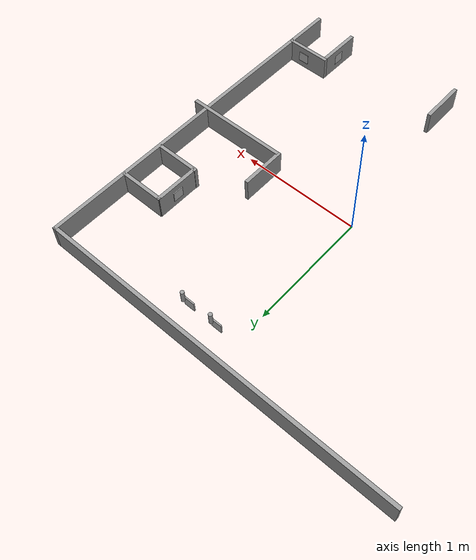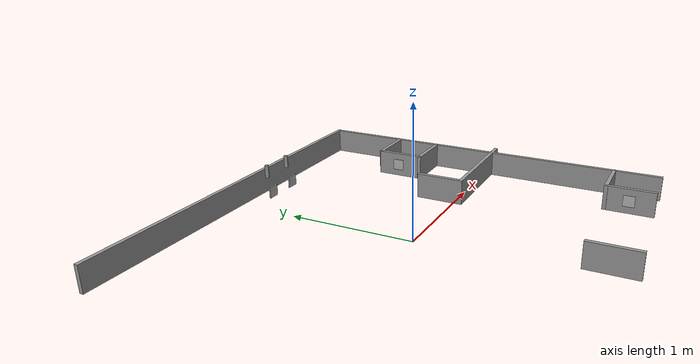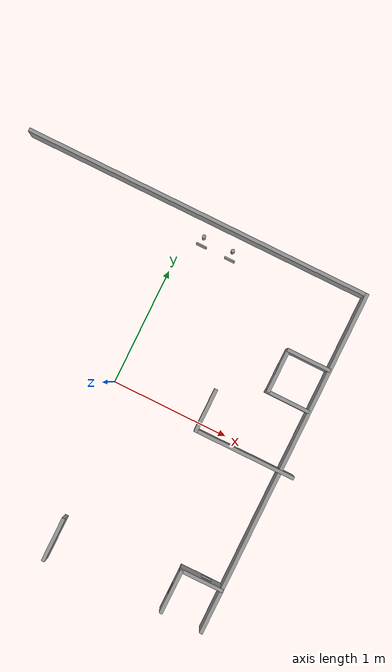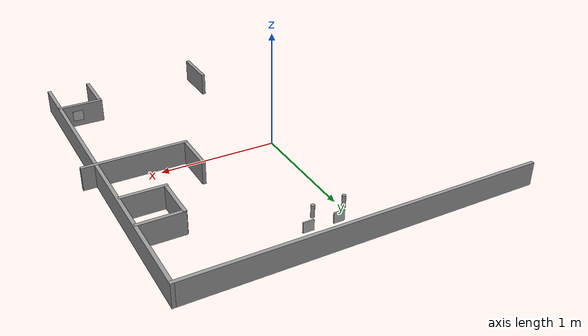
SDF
<sdf version="1.6">
 <model name="course">
  <link name="Wall_11_clone_clone_clone_0">
   <pose>1.32098 0.840435 -0 0 -0 3.1392</pose>
   <inertial>
    <inertia><ixx>1</ixx><ixy>0</ixy><ixz>0</ixz><iyy>1</iyy><iyz>0</iyz><izz>1</izz></inertia>
    <mass>1</mass>
   </inertial>
   <visual name="Wall_11_Visual">
    <pose>0 0 0.1 0 -0 0</pose>
    <geometry><box><size>0.380343 0.03 0.2</size></box></geometry>
    <material>
     <script><uri>file://media/materials/scripts/gazebo.material</uri><name>Gazebo/Grey</name></script>
     <ambient>1 1 1 1</ambient>
     <diffuse>0.7 0.7 0.7 1</diffuse>
     <specular>0.01 0.01 0.01 1</specular>
     <emissive>0 0 0 1</emissive>
     <shader type="pixel"/>
    </material>
   </visual>
   <collision name="Wall_11_Collision">
    <pose>0 0 0.1 0 -0 0</pose>
    <geometry><box><size>0.380343 0.03 0.2</size></box></geometry>
    <surface>
     <friction>
      <ode><mu>1</mu><mu2>1</mu2><fdir1>0 0 0</fdir1><slip1>0</slip1><slip2>0</slip2></ode>
      <torsional>
       <coefficient>1</coefficient>
       <patch_radius>0</patch_radius>
       <surface_radius>0</surface_radius>
       <use_patch_radius>1</use_patch_radius>
       <ode><slip>0</slip></ode>
      </torsional>
     </friction>
     <bounce><restitution_coefficient>0</restitution_coefficient><threshold>1e+06</threshold></bounce>
     <contact>
      <collide_without_contact>0</collide_without_contact>
      <collide_without_contact_bitmask>1</collide_without_contact_bitmask>
      <collide_bitmask>1</collide_bitmask>
      <ode>
       <soft_cfm>0</soft_cfm>
       <soft_erp>0.2</soft_erp>
       <kp>1e+13</kp>
       <kd>1</kd>
       <max_vel>0.01</max_vel>
       <min_depth>0</min_depth>
      </ode>
      <bullet>
       <split_impulse>1</split_impulse>
       <split_impulse_penetration_threshold>-0.01</split_impulse_penetration_threshold>
       <soft_cfm>0</soft_cfm>
       <soft_erp>0.2</soft_erp>
       <kp>1e+13</kp>
       <kd>1</kd>
      </bullet>
     </contact>
    </surface>
   </collision>
   <static>1</static>
  </link>
  <link name="Wall_11_clone_clone_clone_clone">
   <pose>1.14091 0.66035 -0 -0 -0 -1.57398</pose>
   <inertial>
    <inertia><ixx>1</ixx><ixy>0</ixy><ixz>0</ixz><iyy>1</iyy><iyz>0</iyz><izz>1</izz></inertia>
    <mass>1</mass>
   </inertial>
   <visual name="Wall_11_Visual">
    <pose>0 0 0.1 0 -0 0</pose>
    <geometry><box><size>0.380343 0.03 0.2</size></box></geometry>
    <material>
     <script><uri>file://media/materials/scripts/gazebo.material</uri><name>Gazebo/Grey</name></script>
     <ambient>1 1 1 1</ambient>
     <diffuse>0.7 0.7 0.7 1</diffuse>
     <specular>0.01 0.01 0.01 1</specular>
     <emissive>0 0 0 1</emissive>
     <shader type="pixel"/>
    </material>
   </visual>
   <collision name="Wall_11_Collision">
    <pose>0 0 0.1 0 -0 0</pose>
    <geometry><box><size>0.380343 0.03 0.2</size></box></geometry>
    <surface>
     <friction>
      <ode><mu>1</mu><mu2>1</mu2><fdir1>0 0 0</fdir1><slip1>0</slip1><slip2>0</slip2></ode>
      <torsional>
       <coefficient>1</coefficient>
       <patch_radius>0</patch_radius>
       <surface_radius>0</surface_radius>
       <use_patch_radius>1</use_patch_radius>
       <ode><slip>0</slip></ode>
      </torsional>
     </friction>
     <bounce><restitution_coefficient>0</restitution_coefficient><threshold>1e+06</threshold></bounce>
     <contact>
      <collide_without_contact>0</collide_without_contact>
      <collide_without_contact_bitmask>1</collide_without_contact_bitmask>
      <collide_bitmask>1</collide_bitmask>
      <ode>
       <soft_cfm>0</soft_cfm>
       <soft_erp>0.2</soft_erp>
       <kp>1e+13</kp>
       <kd>1</kd>
       <max_vel>0.01</max_vel>
       <min_depth>0</min_depth>
      </ode>
      <bullet>
       <split_impulse>1</split_impulse>
       <split_impulse_penetration_threshold>-0.01</split_impulse_penetration_threshold>
       <soft_cfm>0</soft_cfm>
       <soft_erp>0.2</soft_erp>
       <kp>1e+13</kp>
       <kd>1</kd>
      </bullet>
     </contact>
    </surface>
   </collision>
   <static>1</static>
  </link>
  <link name="Wall_11_clone_clone_clone_clone_clone">
   <pose>1.31241 0.473395 0 -0 -0 -0.00398</pose>
   <inertial>
    <inertia><ixx>1</ixx><ixy>0</ixy><ixz>0</ixz><iyy>1</iyy><iyz>0</iyz><izz>1</izz></inertia>
    <mass>1</mass>
   </inertial>
   <visual name="Wall_11_Visual">
    <pose>0 0 0.1 0 -0 0</pose>
    <geometry><box><size>0.380343 0.03 0.2</size></box></geometry>
    <material>
     <script><uri>file://media/materials/scripts/gazebo.material</uri><name>Gazebo/Grey</name></script>
     <ambient>1 1 1 1</ambient>
     <diffuse>0.7 0.7 0.7 1</diffuse>
     <specular>0.01 0.01 0.01 1</specular>
     <emissive>0 0 0 1</emissive>
     <shader type="pixel"/>
    </material>
   </visual>
   <collision name="Wall_11_Collision">
    <pose>0 0 0.1 0 -0 0</pose>
    <geometry><box><size>0.380343 0.03 0.2</size></box></geometry>
    <surface>
     <friction>
      <ode><mu>1</mu><mu2>1</mu2><fdir1>0 0 0</fdir1><slip1>0</slip1><slip2>0</slip2></ode>
      <torsional>
       <coefficient>1</coefficient>
       <patch_radius>0</patch_radius>
       <surface_radius>0</surface_radius>
       <use_patch_radius>1</use_patch_radius>
       <ode><slip>0</slip></ode>
      </torsional>
     </friction>
     <bounce><restitution_coefficient>0</restitution_coefficient><threshold>1e+06</threshold></bounce>
     <contact>
      <collide_without_contact>0</collide_without_contact>
      <collide_without_contact_bitmask>1</collide_without_contact_bitmask>
      <collide_bitmask>1</collide_bitmask>
      <ode>
       <soft_cfm>0</soft_cfm>
       <soft_erp>0.2</soft_erp>
       <kp>1e+13</kp>
       <kd>1</kd>
       <max_vel>0.01</max_vel>
       <min_depth>0</min_depth>
      </ode>
      <bullet>
       <split_impulse>1</split_impulse>
       <split_impulse_penetration_threshold>-0.01</split_impulse_penetration_threshold>
       <soft_cfm>0</soft_cfm>
       <soft_erp>0.2</soft_erp>
       <kp>1e+13</kp>
       <kd>1</kd>
      </bullet>
     </contact>
    </surface>
   </collision>
   <static>1</static>
  </link>
  <link name="Wall_11_clone_clone_clone_clone_clone_clone">
   <pose>1.15084 -1.2876 -0 0 -0 1.56602</pose>
   <inertial>
    <inertia><ixx>1</ixx><ixy>0</ixy><ixz>0</ixz><iyy>1</iyy><iyz>0</iyz><izz>1</izz></inertia>
    <mass>1</mass>
   </inertial>
   <visual name="Wall_11_Visual">
    <pose>0 0 0.1 0 -0 0</pose>
    <geometry><box><size>0.380343 0.03 0.2</size></box></geometry>
    <material>
     <script><uri>file://media/materials/scripts/gazebo.material</uri><name>Gazebo/Grey</name></script>
     <ambient>1 1 1 1</ambient>
     <diffuse>0.7 0.7 0.7 1</diffuse>
     <specular>0.01 0.01 0.01 1</specular>
     <emissive>0 0 0 1</emissive>
     <shader type="pixel"/>
    </material>
   </visual>
   <collision name="Wall_11_Collision">
    <pose>0 0 0.1 0 -0 0</pose>
    <geometry><box><size>0.380343 0.03 0.2</size></box></geometry>
    <surface>
     <friction>
      <ode><mu>1</mu><mu2>1</mu2><fdir1>0 0 0</fdir1><slip1>0</slip1><slip2>0</slip2></ode>
      <torsional>
       <coefficient>1</coefficient>
       <patch_radius>0</patch_radius>
       <surface_radius>0</surface_radius>
       <use_patch_radius>1</use_patch_radius>
       <ode><slip>0</slip></ode>
      </torsional>
     </friction>
     <bounce><restitution_coefficient>0</restitution_coefficient><threshold>1e+06</threshold></bounce>
     <contact>
      <collide_without_contact>0</collide_without_contact>
      <collide_without_contact_bitmask>1</collide_without_contact_bitmask>
      <collide_bitmask>1</collide_bitmask>
      <ode>
       <soft_cfm>0</soft_cfm>
       <soft_erp>0.2</soft_erp>
       <kp>1e+13</kp>
       <kd>1</kd>
       <max_vel>0.01</max_vel>
       <min_depth>0</min_depth>
      </ode>
      <bullet>
       <split_impulse>1</split_impulse>
       <split_impulse_penetration_threshold>-0.01</split_impulse_penetration_threshold>
       <soft_cfm>0</soft_cfm>
       <soft_erp>0.2</soft_erp>
       <kp>1e+13</kp>
       <kd>1</kd>
      </bullet>
     </contact>
    </surface>
   </collision>
   <static>1</static>
  </link>
  <link name="Wall_11_clone_clone_clone_clone_clone_clone_clone">
   <pose>1.32573 -1.10236 -0 0 -0 3.13602</pose>
   <inertial>
    <inertia><ixx>1</ixx><ixy>0</ixy><ixz>0</ixz><iyy>1</iyy><iyz>0</iyz><izz>1</izz></inertia>
    <mass>1</mass>
   </inertial>
   <visual name="Wall_11_Visual">
    <pose>0 0 0.1 0 -0 0</pose>
    <geometry><box><size>0.380343 0.03 0.2</size></box></geometry>
    <material>
     <script><uri>file://media/materials/scripts/gazebo.material</uri><name>Gazebo/Grey</name></script>
     <ambient>1 1 1 1</ambient>
     <diffuse>0.7 0.7 0.7 1</diffuse>
     <specular>0.01 0.01 0.01 1</specular>
     <emissive>0 0 0 1</emissive>
     <shader type="pixel"/>
    </material>
   </visual>
   <collision name="Wall_11_Collision">
    <pose>0 0 0.1 0 -0 0</pose>
    <geometry><box><size>0.380343 0.03 0.2</size></box></geometry>
    <surface>
     <friction>
      <ode><mu>1</mu><mu2>1</mu2><fdir1>0 0 0</fdir1><slip1>0</slip1><slip2>0</slip2></ode>
      <torsional>
       <coefficient>1</coefficient>
       <patch_radius>0</patch_radius>
       <surface_radius>0</surface_radius>
       <use_patch_radius>1</use_patch_radius>
       <ode><slip>0</slip></ode>
      </torsional>
     </friction>
     <bounce><restitution_coefficient>0</restitution_coefficient><threshold>1e+06</threshold></bounce>
     <contact>
      <collide_without_contact>0</collide_without_contact>
      <collide_without_contact_bitmask>1</collide_without_contact_bitmask>
      <collide_bitmask>1</collide_bitmask>
      <ode>
       <soft_cfm>0</soft_cfm>
       <soft_erp>0.2</soft_erp>
       <kp>1e+13</kp>
       <kd>1</kd>
       <max_vel>0.01</max_vel>
       <min_depth>0</min_depth>
      </ode>
      <bullet>
       <split_impulse>1</split_impulse>
       <split_impulse_penetration_threshold>-0.01</split_impulse_penetration_threshold>
       <soft_cfm>0</soft_cfm>
       <soft_erp>0.2</soft_erp>
       <kp>1e+13</kp>
       <kd>1</kd>
      </bullet>
     </contact>
    </surface>
   </collision>
   <static>1</static>
  </link>
  <link name="Wall_14">
   <pose>0.763969 0.121894 -0 0 0 -1.5708</pose>
   <inertial>
    <inertia><ixx>1</ixx><ixy>0</ixy><ixz>0</ixz><iyy>1</iyy><iyz>0</iyz><izz>1</izz></inertia>
    <mass>1</mass>
   </inertial>
   <visual name="Wall_14_Visual">
    <pose>0 0 0.1 0 -0 0</pose>
    <geometry><box><size>0.379782 0.03 0.2</size></box></geometry>
    <material>
     <script><uri>file://media/materials/scripts/gazebo.material</uri><name>Gazebo/Grey</name></script>
     <ambient>1 1 1 1</ambient>
     <diffuse>0.7 0.7 0.7 1</diffuse>
     <specular>0.01 0.01 0.01 1</specular>
     <emissive>0 0 0 1</emissive>
    </material>
   </visual>
   <collision name="Wall_14_Collision">
    <pose>0 0 0.1 0 -0 0</pose>
    <geometry><box><size>0.379782 0.03 0.2</size></box></geometry>
    <surface>
     <friction>
      <ode><mu>1</mu><mu2>1</mu2><fdir1>0 0 0</fdir1><slip1>0</slip1><slip2>0</slip2></ode>
      <torsional>
       <coefficient>1</coefficient>
       <patch_radius>0</patch_radius>
       <surface_radius>0</surface_radius>
       <use_patch_radius>1</use_patch_radius>
       <ode><slip>0</slip></ode>
      </torsional>
     </friction>
     <bounce><restitution_coefficient>0</restitution_coefficient><threshold>1e+06</threshold></bounce>
     <contact>
      <collide_without_contact>0</collide_without_contact>
      <collide_without_contact_bitmask>1</collide_without_contact_bitmask>
      <collide_bitmask>1</collide_bitmask>
      <ode>
       <soft_cfm>0</soft_cfm>
       <soft_erp>0.2</soft_erp>
       <kp>1e+13</kp>
       <kd>1</kd>
       <max_vel>0.01</max_vel>
       <min_depth>0</min_depth>
      </ode>
      <bullet>
       <split_impulse>1</split_impulse>
       <split_impulse_penetration_threshold>-0.01</split_impulse_penetration_threshold>
       <soft_cfm>0</soft_cfm>
       <soft_erp>0.2</soft_erp>
       <kp>1e+13</kp>
       <kd>1</kd>
      </bullet>
     </contact>
    </surface>
   </collision>
   <static>1</static>
  </link>
  <link name="Wall_15">
   <pose>1.18897 -0.053106 0 0 -0 0</pose>
   <inertial>
    <inertia><ixx>1</ixx><ixy>0</ixy><ixz>0</ixz><iyy>1</iyy><iyz>0</iyz><izz>1</izz></inertia>
    <mass>1</mass>
   </inertial>
   <visual name="Wall_15_Visual">
    <pose>0 0 0.1 0 -0 0</pose>
    <geometry><box><size>0.879767 0.03 0.2</size></box></geometry>
    <material>
     <script><uri>file://media/materials/scripts/gazebo.material</uri><name>Gazebo/Grey</name></script>
     <ambient>1 1 1 1</ambient>
     <diffuse>0.7 0.7 0.7 1</diffuse>
     <specular>0.01 0.01 0.01 1</specular>
     <emissive>0 0 0 1</emissive>
    </material>
   </visual>
   <collision name="Wall_15_Collision">
    <pose>0 0 0.1 0 -0 0</pose>
    <geometry><box><size>0.879767 0.03 0.2</size></box></geometry>
    <surface>
     <friction>
      <ode><mu>1</mu><mu2>1</mu2><fdir1>0 0 0</fdir1><slip1>0</slip1><slip2>0</slip2></ode>
      <torsional>
       <coefficient>1</coefficient>
       <patch_radius>0</patch_radius>
       <surface_radius>0</surface_radius>
       <use_patch_radius>1</use_patch_radius>
       <ode><slip>0</slip></ode>
      </torsional>
     </friction>
     <bounce><restitution_coefficient>0</restitution_coefficient><threshold>1e+06</threshold></bounce>
     <contact>
      <collide_without_contact>0</collide_without_contact>
      <collide_without_contact_bitmask>1</collide_without_contact_bitmask>
      <collide_bitmask>1</collide_bitmask>
      <ode>
       <soft_cfm>0</soft_cfm>
       <soft_erp>0.2</soft_erp>
       <kp>1e+13</kp>
       <kd>1</kd>
       <max_vel>0.01</max_vel>
       <min_depth>0</min_depth>
      </ode>
      <bullet>
       <split_impulse>1</split_impulse>
       <split_impulse_penetration_threshold>-0.01</split_impulse_penetration_threshold>
       <soft_cfm>0</soft_cfm>
       <soft_erp>0.2</soft_erp>
       <kp>1e+13</kp>
       <kd>1</kd>
      </bullet>
     </contact>
    </surface>
   </collision>
   <static>1</static>
  </link>
  <link name="Wall_17">
   <pose>0.128969 -1.33011 -0 0 0 -1.5708</pose>
   <inertial>
    <inertia><ixx>1</ixx><ixy>0</ixy><ixz>0</ixz><iyy>1</iyy><iyz>0</iyz><izz>1</izz></inertia>
    <mass>1</mass>
   </inertial>
   <visual name="Wall_17_Visual">
    <pose>0 0 0.1 0 -0 0</pose>
    <geometry><box><size>0.379578 0.03 0.2</size></box></geometry>
    <material>
     <script><uri>file://media/materials/scripts/gazebo.material</uri><name>Gazebo/Grey</name></script>
     <ambient>1 1 1 1</ambient>
     <diffuse>0.7 0.7 0.7 1</diffuse>
     <specular>0.01 0.01 0.01 1</specular>
     <emissive>0 0 0 1</emissive>
    </material>
   </visual>
   <collision name="Wall_17_Collision">
    <pose>0 0 0.1 0 -0 0</pose>
    <geometry><box><size>0.379578 0.03 0.2</size></box></geometry>
    <surface>
     <friction>
      <ode><mu>1</mu><mu2>1</mu2><fdir1>0 0 0</fdir1><slip1>0</slip1><slip2>0</slip2></ode>
      <torsional>
       <coefficient>1</coefficient>
       <patch_radius>0</patch_radius>
       <surface_radius>0</surface_radius>
       <use_patch_radius>1</use_patch_radius>
       <ode><slip>0</slip></ode>
      </torsional>
     </friction>
     <bounce><restitution_coefficient>0</restitution_coefficient><threshold>1e+06</threshold></bounce>
     <contact>
      <collide_without_contact>0</collide_without_contact>
      <collide_without_contact_bitmask>1</collide_without_contact_bitmask>
      <collide_bitmask>1</collide_bitmask>
      <ode>
       <soft_cfm>0</soft_cfm>
       <soft_erp>0.2</soft_erp>
       <kp>1e+13</kp>
       <kd>1</kd>
       <max_vel>0.01</max_vel>
       <min_depth>0</min_depth>
      </ode>
      <bullet>
       <split_impulse>1</split_impulse>
       <split_impulse_penetration_threshold>-0.01</split_impulse_penetration_threshold>
       <soft_cfm>0</soft_cfm>
       <soft_erp>0.2</soft_erp>
       <kp>1e+13</kp>
       <kd>1</kd>
      </bullet>
     </contact>
    </surface>
   </collision>
   <static>1</static>
  </link>
  <link name="Wall_2">
   <pose>1.50597 0.019894 0 0 0 -1.5708</pose>
   <inertial>
    <inertia><ixx>1</ixx><ixy>0</ixy><ixz>0</ixz><iyy>1</iyy><iyz>0</iyz><izz>1</izz></inertia>
    <mass>1</mass>
   </inertial>
   <visual name="Wall_2_Visual">
    <pose>0 0 0.1 0 -0 0</pose>
    <geometry><box><size>3 0.03 0.2</size></box></geometry>
    <material>
     <script><uri>file://media/materials/scripts/gazebo.material</uri><name>Gazebo/Grey</name></script>
     <ambient>1 1 1 1</ambient>
     <diffuse>0.7 0.7 0.7 1</diffuse>
     <specular>0.01 0.01 0.01 1</specular>
     <emissive>0 0 0 1</emissive>
    </material>
   </visual>
   <collision name="Wall_2_Collision">
    <pose>0 0 0.1 0 -0 0</pose>
    <geometry><box><size>3 0.03 0.2</size></box></geometry>
    <surface>
     <friction>
      <ode><mu>1</mu><mu2>1</mu2><fdir1>0 0 0</fdir1><slip1>0</slip1><slip2>0</slip2></ode>
      <torsional>
       <coefficient>1</coefficient>
       <patch_radius>0</patch_radius>
       <surface_radius>0</surface_radius>
       <use_patch_radius>1</use_patch_radius>
       <ode><slip>0</slip></ode>
      </torsional>
     </friction>
     <bounce><restitution_coefficient>0</restitution_coefficient><threshold>1e+06</threshold></bounce>
     <contact>
      <collide_without_contact>0</collide_without_contact>
      <collide_without_contact_bitmask>1</collide_without_contact_bitmask>
      <collide_bitmask>1</collide_bitmask>
      <ode>
       <soft_cfm>0</soft_cfm>
       <soft_erp>0.2</soft_erp>
       <kp>1e+13</kp>
       <kd>1</kd>
       <max_vel>0.01</max_vel>
       <min_depth>0</min_depth>
      </ode>
      <bullet>
       <split_impulse>1</split_impulse>
       <split_impulse_penetration_threshold>-0.01</split_impulse_penetration_threshold>
       <soft_cfm>0</soft_cfm>
       <soft_erp>0.2</soft_erp>
       <kp>1e+13</kp>
       <kd>1</kd>
      </bullet>
     </contact>
    </surface>
   </collision>
   <static>1</static>
  </link>
  <link name="Wall_9">
   <pose>0.020969 1.50489 -0 0 -0 0</pose>
   <inertial>
    <inertia><ixx>1</ixx><ixy>0</ixy><ixz>0</ixz><iyy>1</iyy><iyz>0</iyz><izz>1</izz></inertia>
    <mass>1</mass>
   </inertial>
   <visual name="Wall_9_Visual">
    <pose>0 0 0.1 0 -0 0</pose>
    <geometry><box><size>2.99951 0.03 0.2</size></box></geometry>
    <material>
     <script><uri>file://media/materials/scripts/gazebo.material</uri><name>Gazebo/Grey</name></script>
     <ambient>1 1 1 1</ambient>
     <diffuse>0.7 0.7 0.7 1</diffuse>
     <specular>0.01 0.01 0.01 1</specular>
     <emissive>0 0 0 1</emissive>
    </material>
   </visual>
   <collision name="Wall_9_Collision">
    <pose>0 0 0.1 0 -0 0</pose>
    <geometry><box><size>2.99951 0.03 0.2</size></box></geometry>
    <surface>
     <friction>
      <ode><mu>1</mu><mu2>1</mu2><fdir1>0 0 0</fdir1><slip1>0</slip1><slip2>0</slip2></ode>
      <torsional>
       <coefficient>1</coefficient>
       <patch_radius>0</patch_radius>
       <surface_radius>0</surface_radius>
       <use_patch_radius>1</use_patch_radius>
       <ode><slip>0</slip></ode>
      </torsional>
     </friction>
     <bounce><restitution_coefficient>0</restitution_coefficient><threshold>1e+06</threshold></bounce>
     <contact>
      <collide_without_contact>0</collide_without_contact>
      <collide_without_contact_bitmask>1</collide_without_contact_bitmask>
      <collide_bitmask>1</collide_bitmask>
      <ode>
       <soft_cfm>0</soft_cfm>
       <soft_erp>0.2</soft_erp>
       <kp>1e+13</kp>
       <kd>1</kd>
       <max_vel>0.01</max_vel>
       <min_depth>0</min_depth>
      </ode>
      <bullet>
       <split_impulse>1</split_impulse>
       <split_impulse_penetration_threshold>-0.01</split_impulse_penetration_threshold>
       <soft_cfm>0</soft_cfm>
       <soft_erp>0.2</soft_erp>
       <kp>1e+13</kp>
       <kd>1</kd>
      </bullet>
     </contact>
    </surface>
   </collision>
   <static>1</static>
  </link>
  <link name="link_0_0">
   <pose>0.400775 1.33846 0.26 0 -0 1.57</pose>
   <inertial>
    <mass>0.00160463</mass>
    <inertia>
     <ixx>9.53e-06</ixx>
     <ixy>0</ixy>
     <ixz>0</ixz>
     <iyy>9.53e-06</iyy>
     <iyz>0</iyz>
     <izz>1.25e-06</izz>
    </inertia>
   </inertial>
   <visual name="visual">
    <geometry><cylinder><radius>0.015</radius><length>0.1</length></cylinder></geometry>
    <material>
     <lighting>1</lighting>
     <script><uri>file://media/materials/scripts/gazebo.material</uri><name>Gazebo/Grey</name></script>
     <ambient>0.3 0.3 0.3 1</ambient>
     <diffuse>0.7 0.7 0.7 1</diffuse>
     <specular>0.01 0.01 0.01 1</specular>
     <emissive>0 0 0 1</emissive>
     <shader type="vertex"><normal_map>__default__</normal_map></shader>
    </material>
   </visual>
   <collision name="collision">
    <geometry><cylinder><radius>0.015</radius><length>0.1</length></cylinder></geometry>
    <surface>
     <friction>
      <ode><mu>1</mu><mu2>1</mu2><fdir1>0 0 0</fdir1><slip1>0</slip1><slip2>0</slip2></ode>
      <torsional>
       <coefficient>1</coefficient>
       <patch_radius>0</patch_radius>
       <surface_radius>0</surface_radius>
       <use_patch_radius>1</use_patch_radius>
       <ode><slip>0</slip></ode>
      </torsional>
     </friction>
     <bounce><restitution_coefficient>0</restitution_coefficient><threshold>1e+06</threshold></bounce>
     <contact>
      <collide_without_contact>0</collide_without_contact>
      <collide_without_contact_bitmask>1</collide_without_contact_bitmask>
      <collide_bitmask>1</collide_bitmask>
      <ode>
       <soft_cfm>0</soft_cfm>
       <soft_erp>0.2</soft_erp>
       <kp>1e+13</kp>
       <kd>1</kd>
       <max_vel>0.01</max_vel>
       <min_depth>0</min_depth>
      </ode>
      <bullet>
       <split_impulse>1</split_impulse>
       <split_impulse_penetration_threshold>-0.01</split_impulse_penetration_threshold>
       <soft_cfm>0</soft_cfm>
       <soft_erp>0.2</soft_erp>
       <kp>1e+13</kp>
       <kd>1</kd>
      </bullet>
     </contact>
    </surface>
   </collision>
   <static>0</static>
  </link>
  <link name="link_0_0_clone">
   <pose>0.14871 1.33863 0.26 0 -0 3.14</pose>
   <inertial>
    <mass>0.00160463</mass>
    <inertia>
     <ixx>9.53e-06</ixx>
     <ixy>0</ixy>
     <ixz>0</ixz>
     <iyy>9.53e-06</iyy>
     <iyz>0</iyz>
     <izz>1.25e-06</izz>
    </inertia>
   </inertial>
   <visual name="visual_0">
    <geometry><cylinder><radius>0.015</radius><length>0.1</length></cylinder></geometry>
    <material>
     <lighting>1</lighting>
     <script><uri>file://media/materials/scripts/gazebo.material</uri><name>Gazebo/Grey</name></script>
     <ambient>0.3 0.3 0.3 1</ambient>
     <diffuse>0.7 0.7 0.7 1</diffuse>
     <specular>0.01 0.01 0.01 1</specular>
     <emissive>0 0 0 1</emissive>
     <shader type="vertex"><normal_map>__default__</normal_map></shader>
    </material>
   </visual>
   <collision name="collision">
    <geometry><cylinder><radius>0.015</radius><length>0.1</length></cylinder></geometry>
    <surface>
     <friction>
      <ode><mu>1</mu><mu2>1</mu2><fdir1>0 0 0</fdir1><slip1>0</slip1><slip2>0</slip2></ode>
      <torsional>
       <coefficient>1</coefficient>
       <patch_radius>0</patch_radius>
       <surface_radius>0</surface_radius>
       <use_patch_radius>1</use_patch_radius>
       <ode><slip>0</slip></ode>
      </torsional>
     </friction>
     <bounce><restitution_coefficient>0</restitution_coefficient><threshold>1e+06</threshold></bounce>
     <contact>
      <collide_without_contact>0</collide_without_contact>
      <collide_without_contact_bitmask>1</collide_without_contact_bitmask>
      <collide_bitmask>1</collide_bitmask>
      <ode>
       <soft_cfm>0</soft_cfm>
       <soft_erp>0.2</soft_erp>
       <kp>1e+13</kp>
       <kd>1</kd>
       <max_vel>0.01</max_vel>
       <min_depth>0</min_depth>
      </ode>
      <bullet>
       <split_impulse>1</split_impulse>
       <split_impulse_penetration_threshold>-0.01</split_impulse_penetration_threshold>
       <soft_cfm>0</soft_cfm>
       <soft_erp>0.2</soft_erp>
       <kp>1e+13</kp>
       <kd>1</kd>
      </bullet>
     </contact>
    </surface>
   </collision>
  </link>
  <model name="armarker02">
   <link name="link">
    <pose>0 0 0.1 0 -0 0</pose>
    <inertial>
     <mass>1</mass>
     <inertia>
      <ixx>0.166667</ixx>
      <ixy>0</ixy>
      <ixz>0</ixz>
      <iyy>0.166667</iyy>
      <iyz>0</iyz>
      <izz>0.166667</izz>
     </inertia>
    </inertial>
    <visual name="visual">
     <geometry><box><size>0.09 0.01 0.09</size></box></geometry>
     <material>
      <script>
       <uri>model://turtlebot3_home_service/armarker02/materials/scripts</uri>
       <uri>model://turtlebot3_home_service/armarker02/materials/textures</uri>
       <name>armarker02</name>
      </script>
     </material>
    </visual>
    <collision name="collision">
     <geometry><box><size>0.09 0.01 0.09</size></box></geometry>
     <surface>
      <friction>
       <ode><mu>1</mu><mu2>1</mu2><fdir1>0 0 0</fdir1><slip1>0</slip1><slip2>0</slip2></ode>
       <torsional>
        <coefficient>1</coefficient>
        <patch_radius>0</patch_radius>
        <surface_radius>0</surface_radius>
        <use_patch_radius>1</use_patch_radius>
        <ode><slip>0</slip></ode>
       </torsional>
      </friction>
      <bounce><restitution_coefficient>0</restitution_coefficient><threshold>1e+06</threshold></bounce>
      <contact>
       <collide_without_contact>0</collide_without_contact>
       <collide_without_contact_bitmask>1</collide_without_contact_bitmask>
       <collide_bitmask>1</collide_bitmask>
       <ode>
        <soft_cfm>0</soft_cfm>
        <soft_erp>0.2</soft_erp>
        <kp>1e+13</kp>
        <kd>1</kd>
        <max_vel>0.01</max_vel>
        <min_depth>0</min_depth>
       </ode>
       <bullet>
        <split_impulse>1</split_impulse>
        <split_impulse_penetration_threshold>-0.01</split_impulse_penetration_threshold>
        <soft_cfm>0</soft_cfm>
        <soft_erp>0.2</soft_erp>
        <kp>1e+13</kp>
        <kd>1</kd>
       </bullet>
      </contact>
     </surface>
    </collision>
   </link>
   <static>1</static>
   <pose>0.150104 1.29248 0 0 0 0</pose>
  </model>
  <model name="armarker03">
   <link name="link">
    <pose>0 0 0.1 0 -0 0</pose>
    <inertial>
     <mass>1</mass>
     <inertia>
      <ixx>0.166667</ixx>
      <ixy>0</ixy>
      <ixz>0</ixz>
      <iyy>0.166667</iyy>
      <iyz>0</iyz>
      <izz>0.166667</izz>
     </inertia>
    </inertial>
    <visual name="visual">
     <geometry><box><size>0.09 0.01 0.09</size></box></geometry>
     <material>
      <script>
       <uri>model://turtlebot3_home_service/armarker03/materials/scripts</uri>
       <uri>model://turtlebot3_home_service/armarker03/materials/textures</uri>
       <name>armarker03</name>
      </script>
     </material>
    </visual>
    <collision name="collision">
     <geometry><box><size>0.09 0.01 0.09</size></box></geometry>
     <surface>
      <friction>
       <ode><mu>1</mu><mu2>1</mu2><fdir1>0 0 0</fdir1><slip1>0</slip1><slip2>0</slip2></ode>
       <torsional>
        <coefficient>1</coefficient>
        <patch_radius>0</patch_radius>
        <surface_radius>0</surface_radius>
        <use_patch_radius>1</use_patch_radius>
        <ode><slip>0</slip></ode>
       </torsional>
      </friction>
      <bounce><restitution_coefficient>0</restitution_coefficient><threshold>1e+06</threshold></bounce>
      <contact>
       <collide_without_contact>0</collide_without_contact>
       <collide_without_contact_bitmask>1</collide_without_contact_bitmask>
       <collide_bitmask>1</collide_bitmask>
       <ode>
        <soft_cfm>0</soft_cfm>
        <soft_erp>0.2</soft_erp>
        <kp>1e+13</kp>
        <kd>1</kd>
        <max_vel>0.01</max_vel>
        <min_depth>0</min_depth>
       </ode>
       <bullet>
        <split_impulse>1</split_impulse>
        <split_impulse_penetration_threshold>-0.01</split_impulse_penetration_threshold>
        <soft_cfm>0</soft_cfm>
        <soft_erp>0.2</soft_erp>
        <kp>1e+13</kp>
        <kd>1</kd>
       </bullet>
      </contact>
     </surface>
    </collision>
   </link>
   <static>1</static>
   <pose>0.401161 1.29022 -0 0 0 0</pose>
  </model>
  <model name="armarker05">
   <link name="link">
    <pose>0 0 0.1 0 -0 0</pose>
    <inertial>
     <mass>1</mass>
     <inertia>
      <ixx>0.166667</ixx>
      <ixy>0</ixy>
      <ixz>0</ixz>
      <iyy>0.166667</iyy>
      <iyz>0</iyz>
      <izz>0.166667</izz>
     </inertia>
    </inertial>
    <visual name="visual">
     <geometry><box><size>0.09 0.01 0.09</size></box></geometry>
     <material>
      <script>
       <uri>model://turtlebot3_home_service/armarker05/materials/scripts</uri>
       <uri>model://turtlebot3_home_service/armarker05/materials/textures</uri>
       <name>armarker05</name>
      </script>
     </material>
    </visual>
    <collision name="collision">
     <geometry><box><size>0.09 0.01 0.09</size></box></geometry>
     <surface>
      <friction>
       <ode><mu>1</mu><mu2>1</mu2><fdir1>0 0 0</fdir1><slip1>0</slip1><slip2>0</slip2></ode>
       <torsional>
        <coefficient>1</coefficient>
        <patch_radius>0</patch_radius>
        <surface_radius>0</surface_radius>
        <use_patch_radius>1</use_patch_radius>
        <ode><slip>0</slip></ode>
       </torsional>
      </friction>
      <bounce><restitution_coefficient>0</restitution_coefficient><threshold>1e+06</threshold></bounce>
      <contact>
       <collide_without_contact>0</collide_without_contact>
       <collide_without_contact_bitmask>1</collide_without_contact_bitmask>
       <collide_bitmask>1</collide_bitmask>
       <ode>
        <soft_cfm>0</soft_cfm>
        <soft_erp>0.2</soft_erp>
        <kp>1e+13</kp>
        <kd>1</kd>
        <max_vel>0.01</max_vel>
        <min_depth>0</min_depth>
       </ode>
       <bullet>
        <split_impulse>1</split_impulse>
        <split_impulse_penetration_threshold>-0.01</split_impulse_penetration_threshold>
        <soft_cfm>0</soft_cfm>
        <soft_erp>0.2</soft_erp>
        <kp>1e+13</kp>
        <kd>1</kd>
       </bullet>
      </contact>
     </surface>
    </collision>
   </link>
   <static>1</static>
   <pose>1.12497 0.670489 -0 0 -0 -1.57642</pose>
  </model>
  <model name="armarker06">
   <link name="link">
    <pose>0 0 0.1 0 -0 0</pose>
    <inertial>
     <mass>1</mass>
     <inertia>
      <ixx>0.166667</ixx>
      <ixy>0</ixy>
      <ixz>0</ixz>
      <iyy>0.166667</iyy>
      <iyz>0</iyz>
      <izz>0.166667</izz>
     </inertia>
    </inertial>
    <visual name="visual">
     <geometry><box><size>0.09 0.01 0.09</size></box></geometry>
     <material>
      <script>
       <uri>model://turtlebot3_home_service/armarker06/materials/scripts</uri>
       <uri>model://turtlebot3_home_service/armarker06/materials/textures</uri>
       <name>armarker06</name>
      </script>
     </material>
    </visual>
    <collision name="collision">
     <geometry><box><size>0.09 0.01 0.09</size></box></geometry>
     <surface>
      <friction>
       <ode><mu>1</mu><mu2>1</mu2><fdir1>0 0 0</fdir1><slip1>0</slip1><slip2>0</slip2></ode>
       <torsional>
        <coefficient>1</coefficient>
        <patch_radius>0</patch_radius>
        <surface_radius>0</surface_radius>
        <use_patch_radius>1</use_patch_radius>
        <ode><slip>0</slip></ode>
       </torsional>
      </friction>
      <bounce><restitution_coefficient>0</restitution_coefficient><threshold>1e+06</threshold></bounce>
      <contact>
       <collide_without_contact>0</collide_without_contact>
       <collide_without_contact_bitmask>1</collide_without_contact_bitmask>
       <collide_bitmask>1</collide_bitmask>
       <ode>
        <soft_cfm>0</soft_cfm>
        <soft_erp>0.2</soft_erp>
        <kp>1e+13</kp>
        <kd>1</kd>
        <max_vel>0.01</max_vel>
        <min_depth>0</min_depth>
       </ode>
       <bullet>
        <split_impulse>1</split_impulse>
        <split_impulse_penetration_threshold>-0.01</split_impulse_penetration_threshold>
        <soft_cfm>0</soft_cfm>
        <soft_erp>0.2</soft_erp>
        <kp>1e+13</kp>
        <kd>1</kd>
       </bullet>
      </contact>
     </surface>
    </collision>
   </link>
   <static>1</static>
   <pose>1.36068 -1.08919 -0 0 0 0</pose>
  </model>
  <model name="armarker06_clone">
   <link name="link">
    <pose>0 0 0.1 0 -0 0</pose>
    <inertial>
     <mass>1</mass>
     <inertia>
      <ixx>0.166667</ixx>
      <ixy>0</ixy>
      <ixz>0</ixz>
      <iyy>0.166667</iyy>
      <iyz>0</iyz>
      <izz>0.166667</izz>
     </inertia>
    </inertial>
    <visual name="visual">
     <geometry><box><size>0.09 0.01 0.09</size></box></geometry>
     <material>
      <script>
       <uri>model://turtlebot3_home_service/armarker06/materials/scripts</uri>
       <uri>model://turtlebot3_home_service/armarker06/materials/textures</uri>
       <name>armarker06</name>
      </script>
     </material>
    </visual>
    <collision name="collision">
     <geometry><box><size>0.09 0.01 0.09</size></box></geometry>
     <surface>
      <friction>
       <ode><mu>1</mu><mu2>1</mu2><fdir1>0 0 0</fdir1><slip1>0</slip1><slip2>0</slip2></ode>
       <torsional>
        <coefficient>1</coefficient>
        <patch_radius>0</patch_radius>
        <surface_radius>0</surface_radius>
        <use_patch_radius>1</use_patch_radius>
        <ode><slip>0</slip></ode>
       </torsional>
      </friction>
      <bounce><restitution_coefficient>0</restitution_coefficient><threshold>1e+06</threshold></bounce>
      <contact>
       <collide_without_contact>0</collide_without_contact>
       <collide_without_contact_bitmask>1</collide_without_contact_bitmask>
       <collide_bitmask>1</collide_bitmask>
       <ode>
        <soft_cfm>0</soft_cfm>
        <soft_erp>0.2</soft_erp>
        <kp>1e+13</kp>
        <kd>1</kd>
        <max_vel>0.01</max_vel>
        <min_depth>0</min_depth>
       </ode>
       <bullet>
        <split_impulse>1</split_impulse>
        <split_impulse_penetration_threshold>-0.01</split_impulse_penetration_threshold>
        <soft_cfm>0</soft_cfm>
        <soft_erp>0.2</soft_erp>
        <kp>1e+13</kp>
        <kd>1</kd>
       </bullet>
      </contact>
     </surface>
    </collision>
   </link>
   <static>1</static>
   <pose>1.14053 -1.28141 0 0 -0 1.57</pose>
  </model>
  <static>0</static>
 </model>
</sdf>
